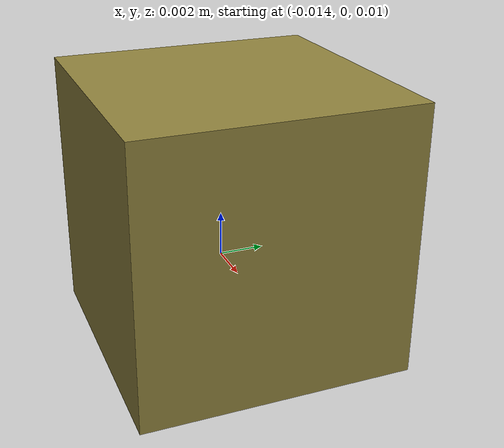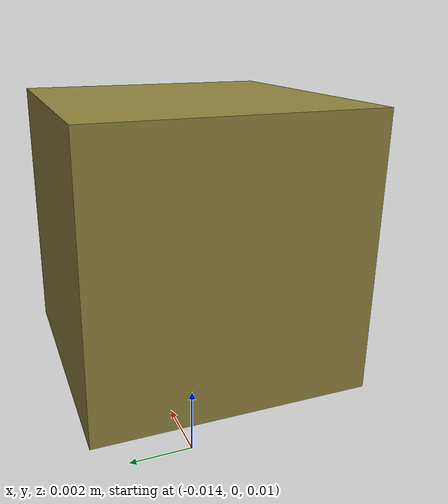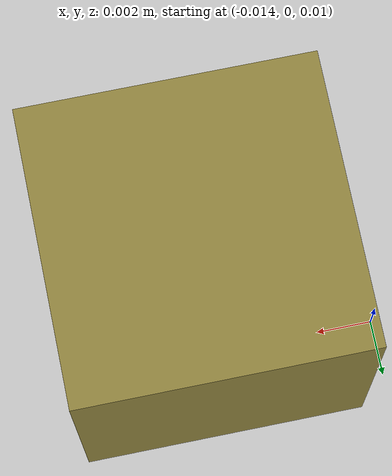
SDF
<?xml version='1.0'?>
<sdf version="1.4">
  <model name="Cube005">
    <link name="Cube005">
    <gravity>0</gravity>
      <collision name="collision">
        <mesh>
          <uri>model://meshes/Cube005.dae</uri>
        </mesh>
      </collision>
      <visual name="visual">
        <geometry>
          <mesh>
            <uri>model://meshes/Cube005.dae</uri>
          </mesh>
        </geometry>
        <surface>
          <friction>
            <ode>
              <mu>0.0</mu>
            </ode>
          </friction>
        </surface>
      </visual>
  </link>
  </model>
</sdf>
